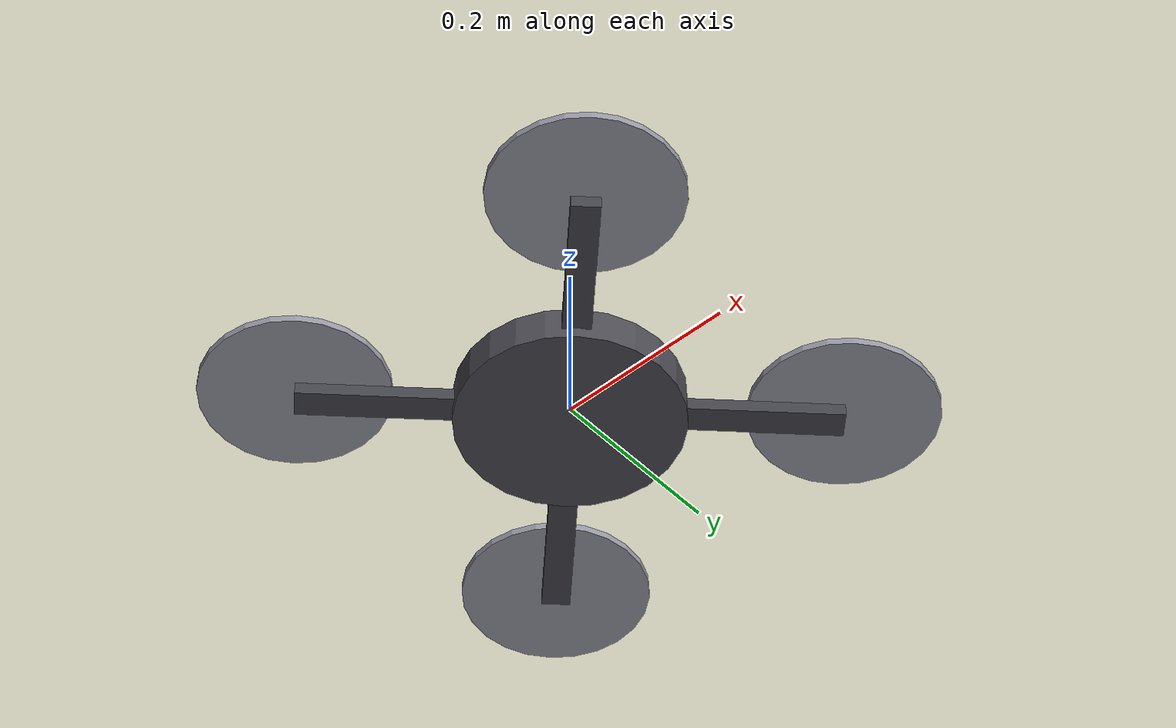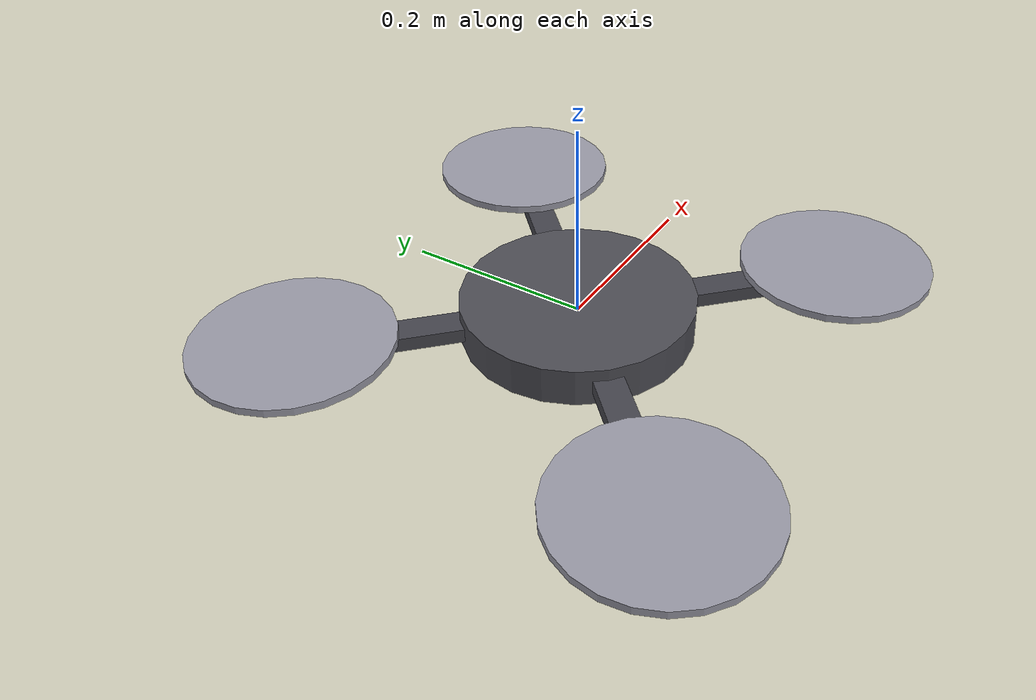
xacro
<?xml version="1.0"?>
<robot name="uav" xmlns:xacro="http://www.ros.org/wiki/xacro">

  <link name="base_link">
    <inertial>
      <origin xyz="0 0 0" rpy="0 0 0"/>
      <mass value="1.0"/>
      <inertia ixx="0.02" ixy="0.0" ixz="0.0" iyy="0.02" iyz="0.0" izz="0.04"/>
    </inertial>

    <!-- Central body -->
    <visual>
      <origin xyz="0 0 0" rpy="0 0 0"/>
      <geometry><cylinder radius="0.12" length="0.04"/></geometry>
      <material name="body_dark">
        <color rgba="0.30 0.30 0.33 1.0"/>
      </material>
    </visual>

    <!-- Arm NE-SW -->
    <visual>
      <origin xyz="0 0 0" rpy="0 0 0.7854"/>
      <geometry><box size="0.56 0.03 0.015"/></geometry>
      <material name="arm_dark">
        <color rgba="0.27 0.27 0.30 1.0"/>
      </material>
    </visual>

    <!-- Arm NW-SE -->
    <visual>
      <origin xyz="0 0 0" rpy="0 0 -0.7854"/>
      <geometry><box size="0.56 0.03 0.015"/></geometry>
      <material name="arm_dark"/>
    </visual>

    <!-- Rotor NE -->
    <visual>
      <origin xyz="0.198 0.198 0.012" rpy="0 0 0"/>
      <geometry><cylinder radius="0.10" length="0.008"/></geometry>
      <material name="rotor_gray">
        <color rgba="0.60 0.60 0.65 1.0"/>
      </material>
    </visual>

    <!-- Rotor NW -->
    <visual>
      <origin xyz="-0.198 0.198 0.012" rpy="0 0 0"/>
      <geometry><cylinder radius="0.10" length="0.008"/></geometry>
      <material name="rotor_gray"/>
    </visual>

    <!-- Rotor SW -->
    <visual>
      <origin xyz="-0.198 -0.198 0.012" rpy="0 0 0"/>
      <geometry><cylinder radius="0.10" length="0.008"/></geometry>
      <material name="rotor_gray"/>
    </visual>

    <!-- Rotor SE -->
    <visual>
      <origin xyz="0.198 -0.198 0.012" rpy="0 0 0"/>
      <geometry><cylinder radius="0.10" length="0.008"/></geometry>
      <material name="rotor_gray"/>
    </visual>

    <collision>
      <origin xyz="0 0 0" rpy="0 0 0"/>
      <geometry><cylinder radius="0.12" length="0.04"/></geometry>
    </collision>
  </link>

</robot>
